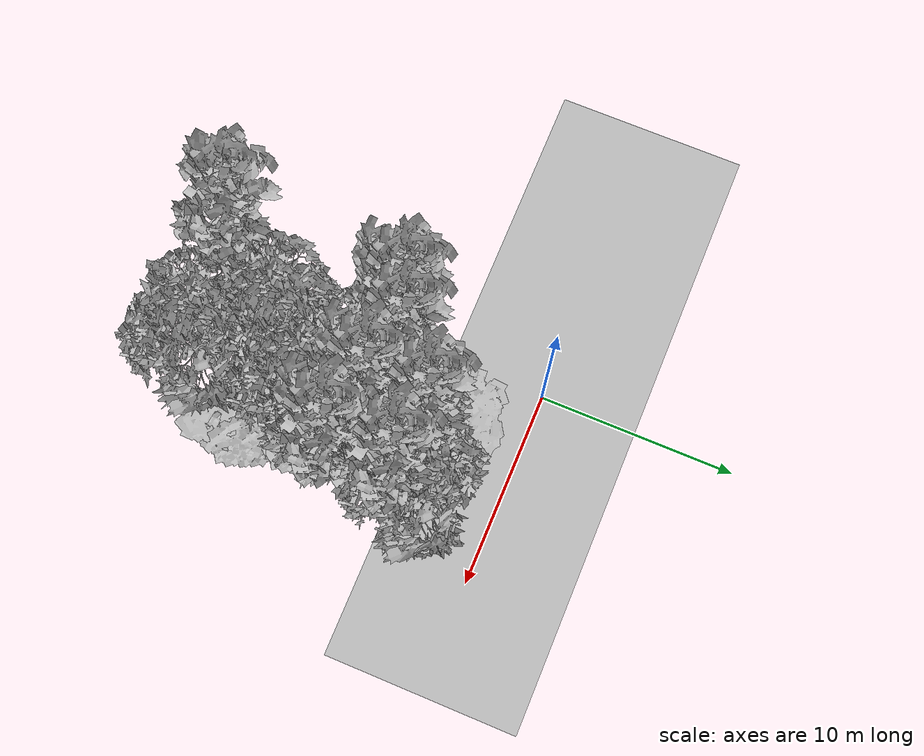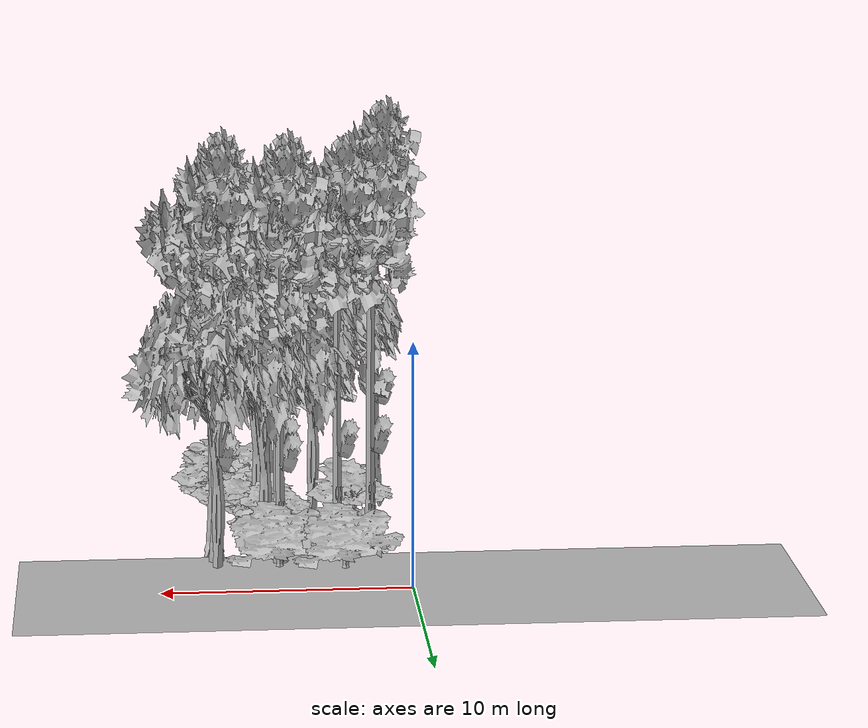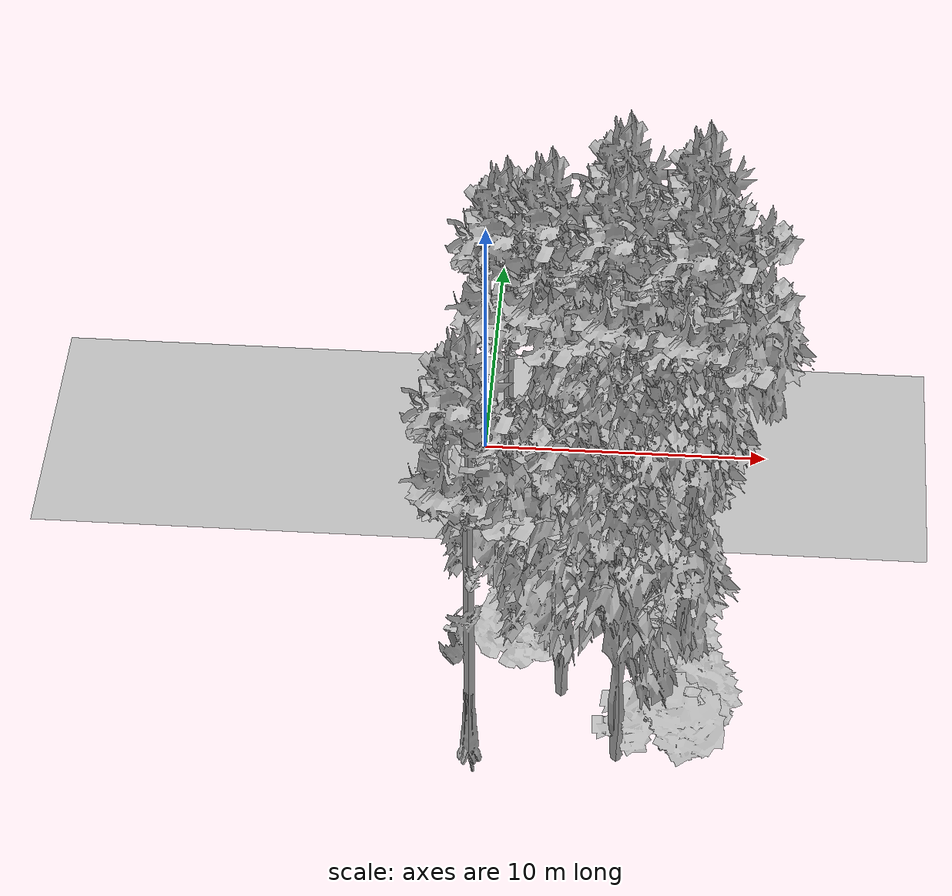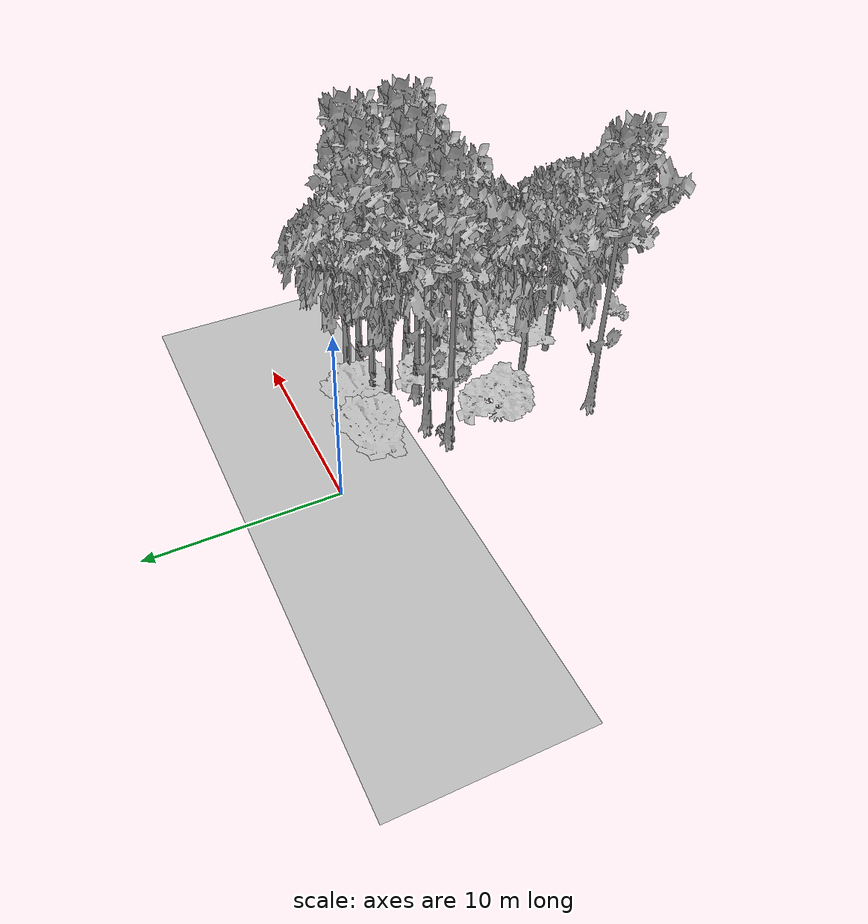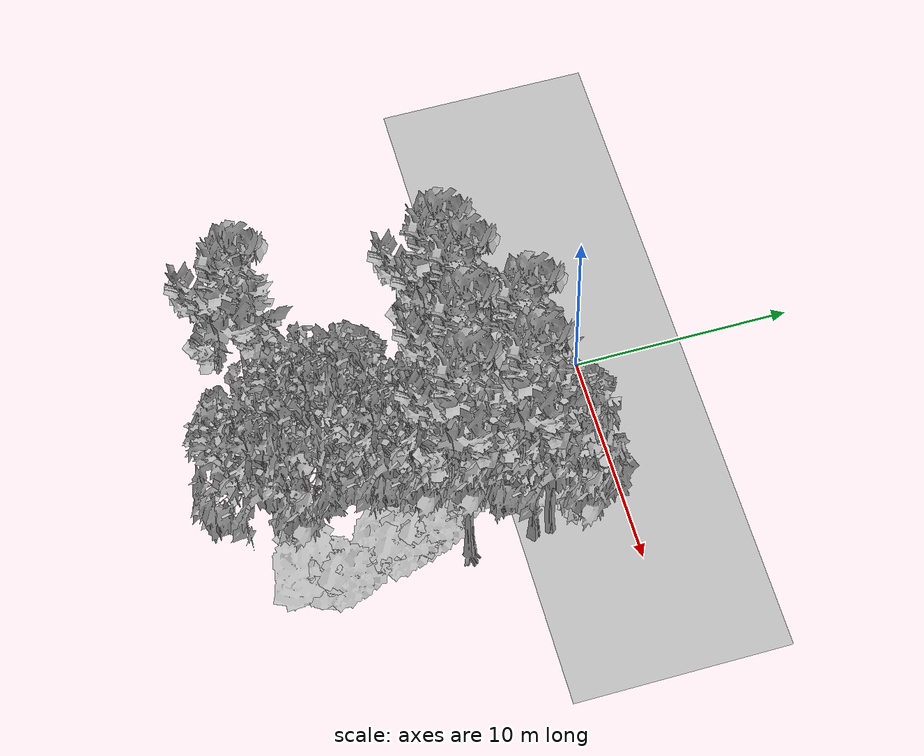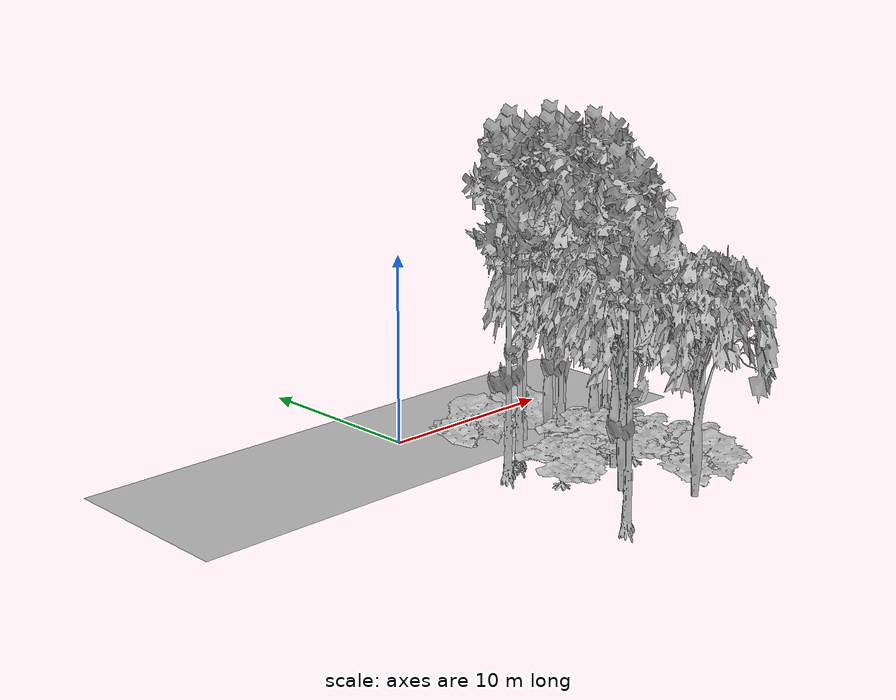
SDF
<sdf version="1.7">
 <world name="default">
  <model name="ground_plane">
   <static>1</static>
   <link name="link">
    <collision name="collision">
     <pose>-50 0 0 0 -0 0</pose>
     <geometry><plane><normal>0 0 1</normal><size>100 100</size></plane></geometry>
     <surface><contact><ode><min_depth>0.01</min_depth><max_vel>0</max_vel></ode></contact></surface>
    </collision>
    <visual name="grass">
     <cast_shadows>0</cast_shadows>
     <geometry>
      <mesh>
       <scale>0.5814285714285714 0.18142857142857144 0.1</scale>
       <uri>file://grass_plane/meshes/grass_plane.dae</uri>
      </mesh>
     </geometry>
    </visual>
   </link>
  </model>
  <model name="Tree 50">
   <static>1</static>
   <pose>2.660142482129224 -5.972167588318628 0 1.57079 -0 0</pose>
   <link name="link">
    <collision name="collision">
     <geometry><mesh><scale>3.5 5 3.5</scale><uri>model://tree_9/meshes/tree_9.obj</uri></mesh></geometry>
    </collision>
    <visual name="visual">
     <geometry><mesh><scale>3.5 5 3.5</scale><uri>model://tree_9/meshes/tree_9.obj</uri></mesh></geometry>
    </visual>
   </link>
  </model>
  <model name="Tree 65">
   <static>1</static>
   <pose>1.713038680948408 -9.706865508055035 0 1.57079 -0 0</pose>
   <link name="link">
    <collision name="collision">
     <geometry><mesh><scale>4 2.5 4</scale><uri>model://tree_1/meshes/tree_1.obj</uri></mesh></geometry>
    </collision>
    <visual name="visual">
     <geometry><mesh><scale>4 2.5 4</scale><uri>model://tree_1/meshes/tree_1.obj</uri></mesh></geometry>
    </visual>
   </link>
  </model>
  <model name="Tree 136">
   <static>1</static>
   <pose>5.788830152645943 -8.070041643483126 0 1.57079 -0 0</pose>
   <link name="link">
    <collision name="collision">
     <geometry><mesh><scale>3.5 5 3.5</scale><uri>model://tree_2/meshes/tree_2.obj</uri></mesh></geometry>
    </collision>
    <visual name="visual">
     <geometry><mesh><scale>3.5 5 3.5</scale><uri>model://tree_2/meshes/tree_2.obj</uri></mesh></geometry>
    </visual>
   </link>
  </model>
  <model name="Tree 138">
   <static>1</static>
   <pose>6.90041762432277 -14.313549820641665 0 1.57079 -0 0</pose>
   <link name="link">
    <collision name="collision">
     <geometry><mesh><scale>3 2 3</scale><uri>model://tree_3/meshes/tree_3.obj</uri></mesh></geometry>
    </collision>
    <visual name="visual">
     <geometry><mesh><scale>3 2 3</scale><uri>model://tree_3/meshes/tree_3.obj</uri></mesh></geometry>
    </visual>
   </link>
  </model>
  <model name="Tree 167">
   <static>1</static>
   <pose>3.283330597846131 -12.036520075544757 0 1.57079 -0 0</pose>
   <link name="link">
    <collision name="collision">
     <geometry><mesh><scale>3.5 5 3.5</scale><uri>model://tree_2/meshes/tree_2.obj</uri></mesh></geometry>
    </collision>
    <visual name="visual">
     <geometry><mesh><scale>3.5 5 3.5</scale><uri>model://tree_2/meshes/tree_2.obj</uri></mesh></geometry>
    </visual>
   </link>
  </model>
  <model name="Tree 194">
   <static>1</static>
   <pose>7.687705798107352 -4.288375049503392 0 1.57079 -0 0</pose>
   <link name="link">
    <collision name="collision">
     <geometry><mesh><scale>3.5 5 3.5</scale><uri>model://tree_9/meshes/tree_9.obj</uri></mesh></geometry>
    </collision>
    <visual name="visual">
     <geometry><mesh><scale>3.5 5 3.5</scale><uri>model://tree_9/meshes/tree_9.obj</uri></mesh></geometry>
    </visual>
   </link>
  </model>
  <model name="Tree 219">
   <static>1</static>
   <pose>5.079739125539568 -6.538088364707363 0 1.57079 -0 0</pose>
   <link name="link">
    <collision name="collision">
     <geometry><mesh><scale>3.5 5 3.5</scale><uri>model://tree_9/meshes/tree_9.obj</uri></mesh></geometry>
    </collision>
    <visual name="visual">
     <geometry><mesh><scale>3.5 5 3.5</scale><uri>model://tree_9/meshes/tree_9.obj</uri></mesh></geometry>
    </visual>
   </link>
  </model>
  <model name="Tree 243">
   <static>1</static>
   <pose>6.243976238186882 -8.928820867786166 0 1.57079 -0 0</pose>
   <link name="link">
    <collision name="collision">
     <geometry><mesh><scale>4 2.5 4</scale><uri>model://tree_1/meshes/tree_1.obj</uri></mesh></geometry>
    </collision>
    <visual name="visual">
     <geometry><mesh><scale>4 2.5 4</scale><uri>model://tree_1/meshes/tree_1.obj</uri></mesh></geometry>
    </visual>
   </link>
  </model>
  <model name="Tree 261">
   <static>1</static>
   <pose>7.377051404371748 -12.733672762128567 0 1.57079 -0 0</pose>
   <link name="link">
    <collision name="collision">
     <geometry><mesh><scale>4 2.5 4</scale><uri>model://tree_1/meshes/tree_1.obj</uri></mesh></geometry>
    </collision>
    <visual name="visual">
     <geometry><mesh><scale>4 2.5 4</scale><uri>model://tree_1/meshes/tree_1.obj</uri></mesh></geometry>
    </visual>
   </link>
  </model>
  <model name="Tree 291">
   <static>1</static>
   <pose>6.631927288628248 -10.113370943968027 0 1.57079 -0 0</pose>
   <link name="link">
    <collision name="collision">
     <geometry><mesh><scale>4 2.5 4</scale><uri>model://tree_1/meshes/tree_1.obj</uri></mesh></geometry>
    </collision>
    <visual name="visual">
     <geometry><mesh><scale>4 2.5 4</scale><uri>model://tree_1/meshes/tree_1.obj</uri></mesh></geometry>
    </visual>
   </link>
  </model>
  <model name="Tree 294">
   <static>1</static>
   <pose>2.5017971766337084 -3.027308772704938 0 1.57079 -0 0</pose>
   <link name="link">
    <collision name="collision">
     <geometry><mesh><scale>3 2 3</scale><uri>model://tree_3/meshes/tree_3.obj</uri></mesh></geometry>
    </collision>
    <visual name="visual">
     <geometry><mesh><scale>3 2 3</scale><uri>model://tree_3/meshes/tree_3.obj</uri></mesh></geometry>
    </visual>
   </link>
  </model>
  <model name="Tree 296">
   <static>1</static>
   <pose>5.247200412381737 -14.903553277386512 0 1.57079 -0 0</pose>
   <link name="link">
    <collision name="collision">
     <geometry><mesh><scale>3.5 5 3.5</scale><uri>model://tree_2/meshes/tree_2.obj</uri></mesh></geometry>
    </collision>
    <visual name="visual">
     <geometry><mesh><scale>3.5 5 3.5</scale><uri>model://tree_2/meshes/tree_2.obj</uri></mesh></geometry>
    </visual>
   </link>
  </model>
  <model name="Tree 317">
   <static>1</static>
   <pose>5.098890482289711 -3.945935796918354 0 1.57079 -0 0</pose>
   <link name="link">
    <collision name="collision">
     <geometry><mesh><scale>3.5 5 3.5</scale><uri>model://tree_9/meshes/tree_9.obj</uri></mesh></geometry>
    </collision>
    <visual name="visual">
     <geometry><mesh><scale>3.5 5 3.5</scale><uri>model://tree_9/meshes/tree_9.obj</uri></mesh></geometry>
    </visual>
   </link>
  </model>
  <model name="Tree 371">
   <static>1</static>
   <pose>1.2482259046276738 -6.561503957506373 0 1.57079 -0 0</pose>
   <link name="link">
    <collision name="collision">
     <geometry><mesh><scale>3.5 5 3.5</scale><uri>model://tree_9/meshes/tree_9.obj</uri></mesh></geometry>
    </collision>
    <visual name="visual">
     <geometry><mesh><scale>3.5 5 3.5</scale><uri>model://tree_9/meshes/tree_9.obj</uri></mesh></geometry>
    </visual>
   </link>
  </model>
  <model name="Tree 426">
   <static>1</static>
   <pose>5.251231783348111 -7.799496385506436 0 1.57079 -0 0</pose>
   <link name="link">
    <collision name="collision">
     <geometry><mesh><scale>4 2.5 4</scale><uri>model://tree_1/meshes/tree_1.obj</uri></mesh></geometry>
    </collision>
    <visual name="visual">
     <geometry><mesh><scale>4 2.5 4</scale><uri>model://tree_1/meshes/tree_1.obj</uri></mesh></geometry>
    </visual>
   </link>
  </model>
  <model name="Tree 445">
   <static>1</static>
   <pose>5.159921835782967 -3.4348183945699304 0 1.57079 -0 0</pose>
   <link name="link">
    <collision name="collision">
     <geometry><mesh><scale>3 2 3</scale><uri>model://tree_3/meshes/tree_3.obj</uri></mesh></geometry>
    </collision>
    <visual name="visual">
     <geometry><mesh><scale>3 2 3</scale><uri>model://tree_3/meshes/tree_3.obj</uri></mesh></geometry>
    </visual>
   </link>
  </model>
  <model name="Tree 452">
   <static>1</static>
   <pose>5.58983084707463 -5.14788949528471 0 1.57079 -0 0</pose>
   <link name="link">
    <collision name="collision">
     <geometry><mesh><scale>3.5 5 3.5</scale><uri>model://tree_2/meshes/tree_2.obj</uri></mesh></geometry>
    </collision>
    <visual name="visual">
     <geometry><mesh><scale>3.5 5 3.5</scale><uri>model://tree_2/meshes/tree_2.obj</uri></mesh></geometry>
    </visual>
   </link>
  </model>
  <model name="Tree 470">
   <static>1</static>
   <pose>7.562739750213453 -3.5376005566674564 0 1.57079 -0 0</pose>
   <link name="link">
    <collision name="collision">
     <geometry><mesh><scale>3.5 5 3.5</scale><uri>model://tree_2/meshes/tree_2.obj</uri></mesh></geometry>
    </collision>
    <visual name="visual">
     <geometry><mesh><scale>3.5 5 3.5</scale><uri>model://tree_2/meshes/tree_2.obj</uri></mesh></geometry>
    </visual>
   </link>
  </model>
  <model name="Tree 483">
   <static>1</static>
   <pose>5.334941988277016 -9.793425730947526 0 1.57079 -0 0</pose>
   <link name="link">
    <collision name="collision">
     <geometry><mesh><scale>3.5 5 3.5</scale><uri>model://tree_2/meshes/tree_2.obj</uri></mesh></geometry>
    </collision>
    <visual name="visual">
     <geometry><mesh><scale>3.5 5 3.5</scale><uri>model://tree_2/meshes/tree_2.obj</uri></mesh></geometry>
    </visual>
   </link>
  </model>
  <model name="Tree 486">
   <static>1</static>
   <pose>0.4915161564271955 -14.75888498207758 0 1.57079 -0 0</pose>
   <link name="link">
    <collision name="collision">
     <geometry><mesh><scale>3.5 5 3.5</scale><uri>model://tree_9/meshes/tree_9.obj</uri></mesh></geometry>
    </collision>
    <visual name="visual">
     <geometry><mesh><scale>3.5 5 3.5</scale><uri>model://tree_9/meshes/tree_9.obj</uri></mesh></geometry>
    </visual>
   </link>
  </model>
  <model name="Tree 539">
   <static>1</static>
   <pose>7.737211822519569 -7.167524977068247 0 1.57079 -0 0</pose>
   <link name="link">
    <collision name="collision">
     <geometry><mesh><scale>3.5 5 3.5</scale><uri>model://tree_9/meshes/tree_9.obj</uri></mesh></geometry>
    </collision>
    <visual name="visual">
     <geometry><mesh><scale>3.5 5 3.5</scale><uri>model://tree_9/meshes/tree_9.obj</uri></mesh></geometry>
    </visual>
   </link>
  </model>
  <model name="Bush 3">
   <static>1</static>
   <pose>1.627783895515357 -6.629418165353224 0 1.57079 -0 0</pose>
   <link name="link">
    <collision name="collision">
     <geometry><mesh><scale>2 2 2</scale><uri>model://bush_2/meshes/bush_2.obj</uri></mesh></geometry>
     <surface><contact><collide_without_contact>false</collide_without_contact></contact></surface>
    </collision>
    <visual name="visual">
     <geometry><mesh><scale>2 2 2</scale><uri>model://bush_2/meshes/bush_2.obj</uri></mesh></geometry>
    </visual>
   </link>
  </model>
 </world>
</sdf>
